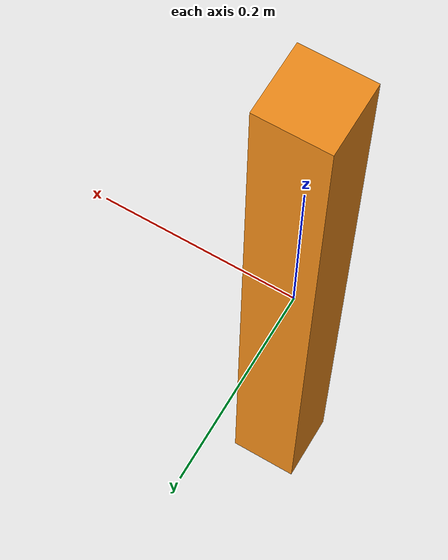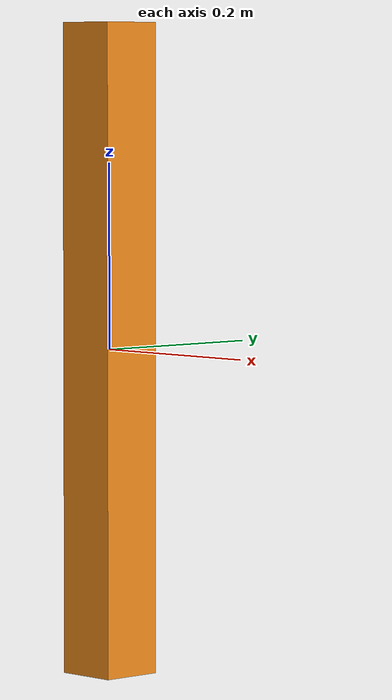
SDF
<?xml version="1.0" ?>
<sdf version="1.6">
  <model name="regolo10">
    <static>false</static>
    <link name="link">
      <collision name="collision">
        <geometry>
          <mesh>
            <uri>model://regolo10/meshes/regolo10.stl</uri>
            <scale>0.07 0.07 0.07</scale>
          </mesh>
        </geometry>
      </collision>
      <visual name="visual">
        <geometry>
          <mesh>
            <uri>model://regolo10/meshes/regolo10.stl</uri>
            <scale>0.07 0.07 0.07</scale>
          </mesh>
        </geometry>
        <material>
          <script>
            <uri>file://media/materials/scripts/gazebo.material</uri>
            <name>Gazebo/Orange</name> <!-- Change this to the desired color -->
          </script>
        </material>
      </visual>
      <inertial>
        <mass>5.0</mass>
        <inertia>
          <ixx>1</ixx>
          <ixy>0.0</ixy>
          <ixz>0.0</ixz>
          <iyy>1</iyy>
          <iyz>0.0</iyz>
          <izz>1</izz>
        </inertia>
      </inertial>
    </link>
  </model>
</sdf>
